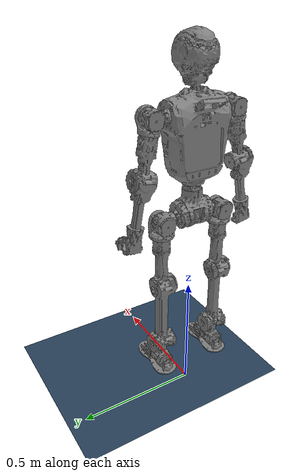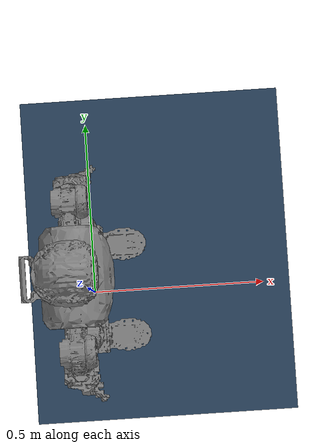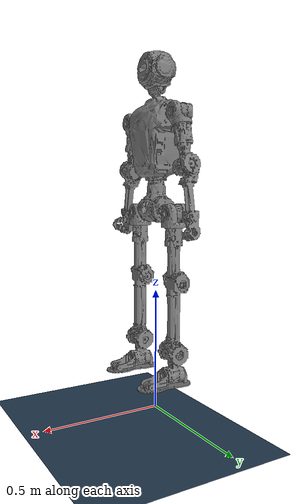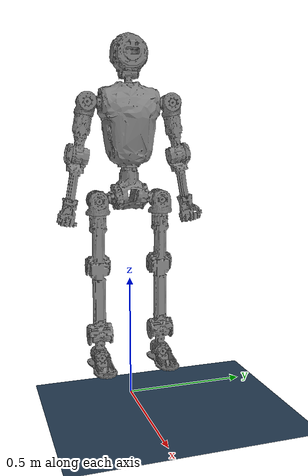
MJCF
<mujoco model="phybot_c2_fitmotion">
  <compiler angle="radian" meshdir="meshes" autolimits="true" balanceinertia="true" />
  <visual>
    <headlight diffuse="0.6 0.6 0.6" ambient="0.35 0.35 0.35" specular="0 0 0" />
    <rgba haze="0.15 0.25 0.35 1" />
    <global azimuth="120" elevation="-20" />
  </visual>
  <asset>
    <texture type="skybox" builtin="gradient" rgb1="0.3 0.5 0.7" rgb2="0 0 0" width="512" height="3072" />
    <texture type="2d" name="groundplane" builtin="checker" mark="edge" rgb1="0.2 0.3 0.4" rgb2="0.1 0.2 0.3" markrgb="0.8 0.8 0.8" width="300" height="300" />
    <material name="groundplane" texture="groundplane" texuniform="true" texrepeat="2.5 2.5" reflectance="0.2" />
    <mesh name="base_link" file="base_link.STL" />
    <mesh name="left_hip_pitch" file="left_hip_pitch.STL" />
    <mesh name="left_hip_roll" file="left_hip_roll.STL" />
    <mesh name="left_hip_yaw" file="left_hip_yaw.STL" />
    <mesh name="left_knee" file="left_knee.STL" />
    <mesh name="left_ankle_pitch" file="left_ankle_pitch.STL" />
    <mesh name="left_ankle_roll" file="left_ankle_roll.STL" />
    <mesh name="right_hip_pitch" file="right_hip_pitch.STL" />
    <mesh name="right_hip_roll" file="right_hip_roll.STL" />
    <mesh name="right_hip_yaw" file="right_hip_yaw.STL" />
    <mesh name="right_knee" file="right_knee.STL" />
    <mesh name="right_ankle_pitch" file="right_ankle_pitch.STL" />
    <mesh name="right_ankle_roll" file="right_ankle_roll.STL" />
    <mesh name="waist_yaw" file="waist_yaw.STL" />
    <mesh name="torso" file="torso.STL" />
    <mesh name="neck_yaw" file="neck_yaw.STL" />
    <mesh name="neck_pitch" file="neck_pitch.STL" />
    <mesh name="left_shoulder_pitch" file="left_shoulder_pitch.STL" />
    <mesh name="left_shoulder_roll" file="left_shoulder_roll.STL" />
    <mesh name="left_shoulder_yaw" file="left_shoulder_yaw.STL" />
    <mesh name="left_elbow_pitch" file="left_elbow_pitch.STL" />
    <mesh name="right_shoulder_pitch" file="right_shoulder_pitch.STL" />
    <mesh name="right_shoulder_roll" file="right_shoulder_roll.STL" />
    <mesh name="right_shoulder_yaw" file="right_shoulder_yaw.STL" />
    <mesh name="right_elbow_pitch" file="right_elbow_pitch.STL" />
  </asset>
  <worldbody>
    <light pos="0 0 3.5" dir="0 0 -1" directional="true" />
    <geom name="floor" size="0 0 0.05" type="plane" material="groundplane" contype="0" conaffinity="0" />
    <body name="base_link" pos="0 0 0.85">
      <inertial pos="-0.00024439 -0.00000053 0.024482" mass="3.2436" fullinertia="0.01455024 0.01201276 0.00611359 0 -0.00006345 0.00000005" />
      <joint name="floating_base_joint" type="free" limited="false" actuatorfrclimited="false" />
      <geom type="mesh" contype="0" conaffinity="0" group="1" density="0" mesh="base_link" />
      <body name="left_hip_pitch" pos="0 0.062831 -0.011079" quat="0.99619483 -0.08715429 0 0">
        <inertial pos="-0.0068877 0.061463 -0.00002976" mass="0.91042" fullinertia="0.00089575 0.00087524 0.0011208 0.00005029 -0.00000962 0.00004487" />
        <joint name="left_hip_pitch" pos="0 0 0" axis="0 1 0" range="-3.05 2.09" />
        <geom type="mesh" contype="0" conaffinity="0" group="1" density="0" mesh="left_hip_pitch" />
        <body name="left_hip_roll" pos="0 0.0695 0" quat="0.99619483 0.08715429 0 0">
          <inertial pos="0.016679 0.00000416 -0.027771" mass="0.23681" fullinertia="0.00030764 0.00029702 0.00028169 -0.000000047 0.00006068 -0.0000000252" />
          <joint name="left_hip_roll" pos="0 0 0" axis="1 0 0" range="-0.44 3.05" />
          <geom type="mesh" contype="0" conaffinity="0" group="1" density="0" mesh="left_hip_roll" />
          <body name="left_hip_yaw" pos="0 0 -0.059">
            <inertial pos="-0.00045919 0.00039478 -0.06289973" mass="1.00442326" fullinertia="0.00397896 0.00385798 0.00060193 0.0000021 -0.00005915 0.00005218" />
            <joint name="left_hip_yaw" pos="0 0 0" axis="0 0 1" range="-2.53 2.53" />
            <geom type="mesh" contype="0" conaffinity="0" group="1" density="0" mesh="left_hip_yaw" />
            <body name="left_knee" pos="-0.015 0 -0.22">
              <inertial pos="0.00690022 -0.00119037 -0.07242078" mass="1.35068107" fullinertia="0.01536708 0.01508204 0.00141368 -0.00000975 0.00078625 0.00014957" />
              <joint name="left_knee" pos="0 0 0" axis="0 1 0" range="-0.05 2.36" />
              <geom type="mesh" contype="0" conaffinity="0" group="1" density="0" mesh="left_knee" />
              <body name="left_ankle_pitch" pos="0.014708 0 -0.279">
                <inertial pos="0.00164957 -0.00318301 -0.04584282" mass="1.55163109" fullinertia="0.00395065 0.00394001 0.00090987 -0.00000815 0.00011066 0.00022668" />
                <joint name="left_ankle_pitch" pos="0 0 0" axis="0 1 0" range="-1.57 1.57" />
                <geom type="mesh" contype="0" conaffinity="0" group="1" density="0" mesh="left_ankle_pitch" />
                <body name="left_ankle_roll" pos="0.00029206 0 -0.09">
                  <inertial pos="0.05041002 0.00000019 -0.02748604" mass="0.38800953" fullinertia="0.00027799 0.00154222 0.00166197 0 -0.00000879 0" />
                  <joint name="left_ankle_roll" pos="0 0 0" axis="1 0 0" range="-1.13 1.13" />
                  <geom type="mesh" contype="0" conaffinity="0" group="1" density="0" mesh="left_ankle_roll" />
                </body>
              </body>
            </body>
          </body>
        </body>
      </body>
      <body name="right_hip_pitch" pos="0 -0.062831 -0.011079" quat="0.99619483 0.08715429 0 0">
        <inertial pos="-0.00688772 -0.06146329 0.00002974" mass="0.91041684" fullinertia="0.00089575 0.00087513 0.00112092 -0.00005055 -0.00000816 -0.00004455" />
        <joint name="right_hip_pitch" pos="0 0 0" axis="0 1 0" range="-3.05 2.09" />
        <geom type="mesh" contype="0" conaffinity="0" group="1" density="0" mesh="right_hip_pitch" />
        <body name="right_hip_roll" pos="0 -0.0695 0" quat="0.99619483 -0.08715429 0 0">
          <inertial pos="0.01667909 0.00000401 -0.02777141" mass="0.23680885" fullinertia="0.0003076427 0.0002970201 0.0002816906 -0.0000000466 0.0000606802 -0.0000000251" />
          <joint name="right_hip_roll" pos="0 0 0" axis="1 0 0" range="-3.05 0.44" />
          <geom type="mesh" contype="0" conaffinity="0" group="1" density="0" mesh="right_hip_roll" />
          <body name="right_hip_yaw" pos="0 0 -0.056">
            <inertial pos="-0.00045924 -0.00039508 -0.06613876" mass="1.00442727" fullinertia="0.00402526 0.00390428 0.00060193 -0.0000021 -0.00005945 -0.00005248" />
            <joint name="right_hip_yaw" pos="0 0 0" axis="0 0 1" range="-2.53 2.53" />
            <geom type="mesh" contype="0" conaffinity="0" group="1" density="0" mesh="right_hip_yaw" />
            <body name="right_knee" pos="-0.015 0 -0.223">
              <inertial pos="0.00695884 0.00119035 -0.07242079" mass="1.35067962" fullinertia="0.01536708 0.0150833 0.00141494 0.00001 0.00079947 -0.00014957" />
              <joint name="right_knee" pos="0 0 0" axis="0 1 0" range="-0.05 2.36" />
              <geom type="mesh" contype="0" conaffinity="0" group="1" density="0" mesh="right_knee" />
              <body name="right_ankle_pitch" pos="0.015 0 -0.279">
                <inertial pos="0.00164662 0.00318309 -0.04584282" mass="1.55163109" fullinertia="0.00395065 0.00393966 0.00090952 0.00000815 0.00011046 -0.00022668" />
                <joint name="right_ankle_pitch" pos="0 0 0" axis="0 1 0" range="-1.57 1.57" />
                <geom type="mesh" contype="0" conaffinity="0" group="1" density="0" mesh="right_ankle_pitch" />
                <body name="right_ankle_roll" pos="0 0 -0.09">
                  <inertial pos="0.05196083 -0.00000008 -0.02738312" mass="0.39712222" fullinertia="0.00028061 0.00158339 0.00170509 0 -0.00001149 0" />
                  <joint name="right_ankle_roll" pos="0 0 0" axis="1 0 0" range="-1.13 1.13" />
                  <geom type="mesh" contype="0" conaffinity="0" group="1" density="0" mesh="right_ankle_roll" />
                </body>
              </body>
            </body>
          </body>
        </body>
      </body>
      <body name="waist_yaw" pos="0 0 0.146">
        <inertial pos="0.00026655 0.00000002 0.01613689" mass="0.20917257" fullinertia="0.0003832353 0.0001117417 0.0004787455 -0.0000000001 -0.0000016186 0" />
        <joint name="waist_yaw" pos="0 0 0" axis="0 0 1" range="-2.62 2.62" />
        <geom type="mesh" contype="0" conaffinity="0" group="1" density="0" mesh="waist_yaw" />
        <geom type="mesh" contype="0" conaffinity="0" group="1" density="0" mesh="torso" pos="0 0 0.107" />
        <geom type="mesh" contype="0" conaffinity="0" group="1" density="0" mesh="neck_yaw" pos="0 0 0.265" />
        <geom type="mesh" contype="0" conaffinity="0" group="1" density="0" mesh="neck_pitch" pos="0 0 0.334" />
        <body name="left_shoulder_pitch" pos="0 0.105 0.22">
          <inertial pos="0.00237654 0.06439003 -0.00000007" mass="0.82796327" fullinertia="0.00052588 0.00045721 0.00060543 -0.00000536 0.000000002 0" />
          <joint name="left_shoulder_pitch" pos="0 0 0" axis="0 1 0" range="-3.58 2.01" />
          <geom type="mesh" contype="0" conaffinity="0" group="1" density="0" mesh="left_shoulder_pitch" />
          <body name="left_shoulder_roll" pos="0 0.068 0">
            <inertial pos="0.01637741 0.00380027 -0.02154578" mass="0.22478405" fullinertia="0.0002739021 0.0002654093 0.0002423243 0.000014328 -0.0000812398 0.0000042025" />
            <joint name="left_shoulder_roll" pos="0 0 0" axis="1 0 0" range="-0.35 3.05" />
            <geom type="mesh" contype="0" conaffinity="0" group="1" density="0" mesh="left_shoulder_roll" />
            <body name="left_shoulder_yaw" pos="-0.00052455 0.0085956 -0.048748" quat="0.99619483 0.08715429 0 0">
              <inertial pos="-0.00003441 -0.00072495 -0.09813515" mass="1.59289092" fullinertia="0.00683807 0.00658422 0.00096708 -0.00000093 0.00000551 0.00094604" />
              <joint name="left_shoulder_yaw" pos="0 0 0" axis="0 0 1" range="-2.53 2.53" />
              <geom type="mesh" contype="0" conaffinity="0" group="1" density="0" mesh="left_shoulder_yaw" />
              <body name="left_elbow_pitch" pos="0 0 -0.16">
                <inertial pos="-0.00190097 0.00502666 -0.14736534" mass="0.8519917" fullinertia="0.00776667 0.00762189 0.00071389 -0.00013159 0.00042709 0.00093487" />
                <joint name="left_elbow_pitch" pos="0 0 0" axis="0 1 0" range="-2.36 0" />
                <geom type="mesh" contype="0" conaffinity="0" group="1" density="0" mesh="left_elbow_pitch" />
              </body>
            </body>
          </body>
        </body>
        <body name="right_shoulder_pitch" pos="0 -0.105 0.22">
          <inertial pos="0.00237647 -0.06439003 -0.00000228" mass="0.82796327" fullinertia="0.00052588 0.00045721 0.00060543 0.00000537 0.00000003 0.0000001" />
          <joint name="right_shoulder_pitch" pos="0 0 0" axis="0 1 0" range="-3.58 2.01" />
          <geom type="mesh" contype="0" conaffinity="0" group="1" density="0" mesh="right_shoulder_pitch" />
          <body name="right_shoulder_roll" pos="0 -0.068 0">
            <inertial pos="0.01637632 -0.00379761 -0.02154589" mass="0.22478267" fullinertia="0.0002739 0.0002654101 0.0002423238 -0.0000143216 -0.0000812409 -0.0000042003" />
            <joint name="right_shoulder_roll" pos="0 0 0" axis="1 0 0" range="-3.05 0.35" />
            <geom type="mesh" contype="0" conaffinity="0" group="1" density="0" mesh="right_shoulder_roll" />
            <body name="right_shoulder_yaw" pos="-0.00052455 -0.0085956 -0.048748" quat="0.99619483 -0.08715429 0 0">
              <inertial pos="-0.00003441 0.00072495 -0.09813515" mass="1.59289092" fullinertia="0.00683807 0.00658422 0.00096708 0.00000093 0.00000551 -0.00094604" />
              <joint name="right_shoulder_yaw" pos="0 0 0" axis="0 0 1" range="-2.53 2.53" />
              <geom type="mesh" contype="0" conaffinity="0" group="1" density="0" mesh="right_shoulder_yaw" />
              <body name="right_elbow_pitch" pos="0 0 -0.16">
                <inertial pos="-0.00190041 -0.00503062 -0.14735091" mass="0.85209178" fullinertia="0.00776808 0.00762329 0.0007139 0.0001316 0.00042707 -0.0009348" />
                <joint name="right_elbow_pitch" pos="0 0 0" axis="0 1 0" range="-2.36 0" />
                <geom type="mesh" contype="0" conaffinity="0" group="1" density="0" mesh="right_elbow_pitch" />
              </body>
            </body>
          </body>
        </body>
      </body>
    </body>
  </worldbody>
  <actuator>
    <motor name="left_hip_pitch" joint="left_hip_pitch" />
    <motor name="left_hip_roll" joint="left_hip_roll" />
    <motor name="left_hip_yaw" joint="left_hip_yaw" />
    <motor name="left_knee" joint="left_knee" />
    <motor name="left_ankle_pitch" joint="left_ankle_pitch" />
    <motor name="left_ankle_roll" joint="left_ankle_roll" />
    <motor name="right_hip_pitch" joint="right_hip_pitch" />
    <motor name="right_hip_roll" joint="right_hip_roll" />
    <motor name="right_hip_yaw" joint="right_hip_yaw" />
    <motor name="right_knee" joint="right_knee" />
    <motor name="right_ankle_pitch" joint="right_ankle_pitch" />
    <motor name="right_ankle_roll" joint="right_ankle_roll" />
    <motor name="waist_yaw" joint="waist_yaw" />
    <motor name="left_shoulder_pitch" joint="left_shoulder_pitch" />
    <motor name="left_shoulder_roll" joint="left_shoulder_roll" />
    <motor name="left_shoulder_yaw" joint="left_shoulder_yaw" />
    <motor name="left_elbow_pitch" joint="left_elbow_pitch" />
    <motor name="right_shoulder_pitch" joint="right_shoulder_pitch" />
    <motor name="right_shoulder_roll" joint="right_shoulder_roll" />
    <motor name="right_shoulder_yaw" joint="right_shoulder_yaw" />
    <motor name="right_elbow_pitch" joint="right_elbow_pitch" />
  </actuator>
</mujoco>
